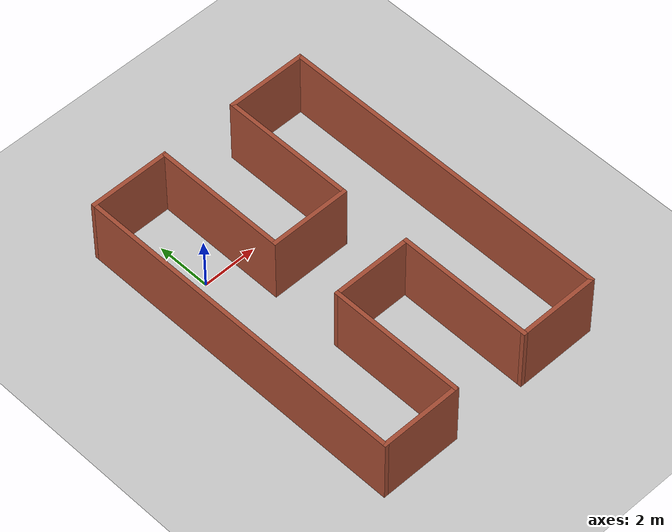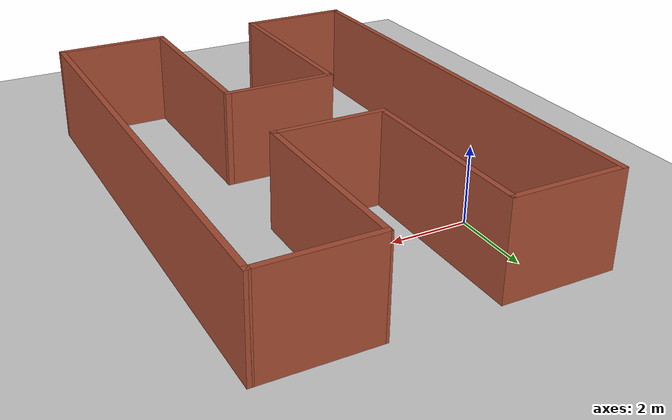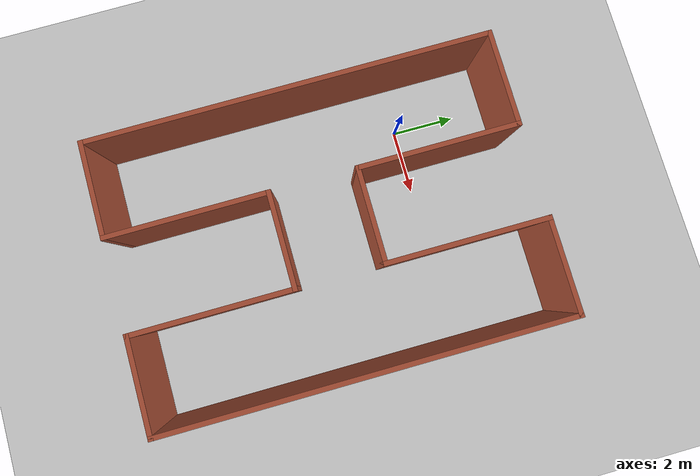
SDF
<sdf version="1.6">
 <world name="default">
  <light name="sun" type="directional">
   <pose>0 0 10 0 -0 0</pose>
   <diffuse>0.8 0.8 0.8 1</diffuse>
   <specular>0.2 0.2 0.2 1</specular>
   <attenuation>
    <range>1000</range>
    <constant>0.9</constant>
    <linear>0.01</linear>
    <quadratic>0.001</quadratic>
   </attenuation>
   <direction>-0.5 0.1 -0.9</direction>
  </light>
  <model name="ground_plane">
   <static>1</static>
   <link name="link">
    <collision name="collision">
     <geometry><plane><normal>0 0 1</normal><size>100 100</size></plane></geometry>
     <surface>
      <contact><collide_bitmask>65535</collide_bitmask></contact>
      <friction><ode><mu>100</mu><mu2>50</mu2></ode></friction>
     </surface>
    </collision>
    <visual name="visual">
     <cast_shadows>0</cast_shadows>
     <geometry><plane><normal>0 0 1</normal><size>100 100</size></plane></geometry>
     <material>
      <script><uri>file://media/materials/scripts/gazebo.material</uri><name>Gazebo/Grey</name></script>
     </material>
    </visual>
   </link>
  </model>
  <gravity>0 0 -9.8</gravity>
  <magnetic_field>6e-06 2.3e-05 -4.2e-05</magnetic_field>
  <atmosphere type="adiabatic"/>
  <physics name="default_physics" default="0" type="ode">
   <max_step_size>0.001</max_step_size>
   <real_time_factor>1</real_time_factor>
   <real_time_update_rate>1000</real_time_update_rate>
  </physics>
  <scene><ambient>0.4 0.4 0.4 1</ambient><background>0.7 0.7 0.7 1</background><shadows>1</shadows></scene>
  <spherical_coordinates>
   <surface_model>EARTH_WGS84</surface_model>
   <latitude_deg>0</latitude_deg>
   <longitude_deg>0</longitude_deg>
   <elevation>0</elevation>
   <heading_deg>0</heading_deg>
  </spherical_coordinates>
  <model name="Home">
   <pose>2.69856 -3.09385 0 0 -0 0</pose>
   <link name="Wall_11">
    <collision name="Wall_11_Collision">
     <geometry><box><size>12.5 0.15 2.5</size></box></geometry>
     <pose>0 0 1.25 0 -0 0</pose>
    </collision>
    <visual name="Wall_11_Visual">
     <pose>0 0 1.25 0 -0 0</pose>
     <geometry><box><size>12.5 0.15 2.5</size></box></geometry>
     <material>
      <script><uri>file://media/materials/scripts/gazebo.material</uri><name>Gazebo/Bricks</name></script>
      <ambient>1 1 1 1</ambient>
     </material>
     <meta><layer>0</layer></meta>
    </visual>
    <pose>4.27511 -2e-06 0 0 0 -1.5708</pose>
   </link>
   <link name="Wall_13">
    <collision name="Wall_13_Collision">
     <geometry><box><size>3 0.15 2.5</size></box></geometry>
     <pose>0 0 1.25 0 -0 0</pose>
    </collision>
    <visual name="Wall_13_Visual">
     <pose>0 0 1.25 0 -0 0</pose>
     <geometry><box><size>3 0.15 2.5</size></box></geometry>
     <material>
      <script><uri>file://media/materials/scripts/gazebo.material</uri><name>Gazebo/Bricks</name></script>
      <ambient>1 1 1 1</ambient>
     </material>
     <meta><layer>0</layer></meta>
    </visual>
    <pose>2.85011 -6.175 0 0 -0 3.14159</pose>
   </link>
   <link name="Wall_14">
    <collision name="Wall_14_Collision">
     <geometry><box><size>5 0.15 2.5</size></box></geometry>
     <pose>0 0 1.25 0 -0 0</pose>
    </collision>
    <visual name="Wall_14_Visual">
     <pose>0 0 1.25 0 -0 0</pose>
     <geometry><box><size>5 0.15 2.5</size></box></geometry>
     <material>
      <script><uri>file://media/materials/scripts/gazebo.material</uri><name>Gazebo/Bricks</name></script>
      <ambient>1 1 1 1</ambient>
     </material>
     <meta><layer>0</layer></meta>
    </visual>
    <pose>1.42511 -3.75 0 0 -0 1.5708</pose>
   </link>
   <link name="Wall_15">
    <collision name="Wall_15_Collision">
     <geometry><box><size>3 0.15 2.5</size></box></geometry>
     <pose>0 0 1.25 0 -0 0</pose>
    </collision>
    <visual name="Wall_15_Visual">
     <pose>0 0 1.25 0 -0 0</pose>
     <geometry><box><size>3 0.15 2.5</size></box></geometry>
     <material>
      <script><uri>file://media/materials/scripts/gazebo.material</uri><name>Gazebo/Bricks</name></script>
      <ambient>1 1 1 1</ambient>
     </material>
     <meta><layer>0</layer></meta>
    </visual>
    <pose>0.000111 -1.325 0 0 -0 3.14159</pose>
   </link>
   <link name="Wall_16">
    <collision name="Wall_16_Collision">
     <geometry><box><size>5 0.15 2.5</size></box></geometry>
     <pose>0 0 1.25 0 -0 0</pose>
    </collision>
    <visual name="Wall_16_Visual">
     <pose>0 0 1.25 0 -0 0</pose>
     <geometry><box><size>5 0.15 2.5</size></box></geometry>
     <material>
      <script><uri>file://media/materials/scripts/gazebo.material</uri><name>Gazebo/Bricks</name></script>
      <ambient>1 1 1 1</ambient>
     </material>
     <meta><layer>0</layer></meta>
    </visual>
    <pose>-1.42489 -3.75 0 0 0 -1.5708</pose>
   </link>
   <link name="Wall_2">
    <collision name="Wall_2_Collision">
     <geometry><box><size>3 0.15 2.5</size></box></geometry>
     <pose>0 0 1.25 0 -0 0</pose>
    </collision>
    <visual name="Wall_2_Visual">
     <pose>0 0 1.25 0 -0 0</pose>
     <geometry><box><size>3 0.15 2.5</size></box></geometry>
     <material>
      <script><uri>file://media/materials/scripts/gazebo.material</uri><name>Gazebo/Bricks</name></script>
      <ambient>1 1 1 1</ambient>
     </material>
     <meta><layer>0</layer></meta>
    </visual>
    <pose>-2.85011 6.1748 0 0 -0 0</pose>
   </link>
   <link name="Wall_20">
    <collision name="Wall_20_Collision">
     <geometry><box><size>3 0.15 2.5</size></box></geometry>
     <pose>0 0 1.25 0 -0 0</pose>
    </collision>
    <visual name="Wall_20_Visual">
     <pose>0 0 1.25 0 -0 0</pose>
     <geometry><box><size>3 0.15 2.5</size></box></geometry>
     <material>
      <script><uri>file://media/materials/scripts/gazebo.material</uri><name>Gazebo/Bricks</name></script>
      <ambient>1 1 1 1</ambient>
     </material>
     <meta><layer>0</layer></meta>
    </visual>
    <pose>-2.84989 -6.175 0 0 -0 3.14159</pose>
   </link>
   <link name="Wall_21">
    <collision name="Wall_21_Collision">
     <geometry><box><size>12.4998 0.15 2.5</size></box></geometry>
     <pose>0 0 1.25 0 -0 0</pose>
    </collision>
    <visual name="Wall_21_Visual">
     <pose>0 0 1.25 0 -0 0</pose>
     <geometry><box><size>12.4998 0.15 2.5</size></box></geometry>
     <material>
      <script><uri>file://media/materials/scripts/gazebo.material</uri><name>Gazebo/Bricks</name></script>
      <ambient>1 1 1 1</ambient>
     </material>
     <meta><layer>0</layer></meta>
    </visual>
    <pose>-4.275 -0.000101 0 0 -0 1.57081</pose>
   </link>
   <link name="Wall_5">
    <collision name="Wall_5_Collision">
     <geometry><box><size>5 0.15 2.5</size></box></geometry>
     <pose>0 0 1.25 0 -0 0</pose>
    </collision>
    <visual name="Wall_5_Visual">
     <pose>0 0 1.25 0 -0 0</pose>
     <geometry><box><size>5 0.15 2.5</size></box></geometry>
     <material>
      <script><uri>file://media/materials/scripts/gazebo.material</uri><name>Gazebo/Bricks</name></script>
      <ambient>1 1 1 1</ambient>
     </material>
     <meta><layer>0</layer></meta>
    </visual>
    <pose>-1.42511 3.7498 0 0 0 -1.5708</pose>
   </link>
   <link name="Wall_6">
    <collision name="Wall_6_Collision">
     <geometry><box><size>3 0.15 2.5</size></box></geometry>
     <pose>0 0 1.25 0 -0 0</pose>
    </collision>
    <visual name="Wall_6_Visual">
     <pose>0 0 1.25 0 -0 0</pose>
     <geometry><box><size>3 0.15 2.5</size></box></geometry>
     <material>
      <script><uri>file://media/materials/scripts/gazebo.material</uri><name>Gazebo/Bricks</name></script>
      <ambient>1 1 1 1</ambient>
     </material>
     <meta><layer>0</layer></meta>
    </visual>
    <pose>-0.000109 1.3248 0 0 -0 0</pose>
   </link>
   <link name="Wall_7">
    <collision name="Wall_7_Collision">
     <geometry><box><size>5 0.15 2.5</size></box></geometry>
     <pose>0 0 1.25 0 -0 0</pose>
    </collision>
    <visual name="Wall_7_Visual">
     <pose>0 0 1.25 0 -0 0</pose>
     <geometry><box><size>5 0.15 2.5</size></box></geometry>
     <material>
      <script><uri>file://media/materials/scripts/gazebo.material</uri><name>Gazebo/Bricks</name></script>
      <ambient>1 1 1 1</ambient>
     </material>
     <meta><layer>0</layer></meta>
    </visual>
    <pose>1.42489 3.7498 0 0 -0 1.5708</pose>
   </link>
   <link name="Wall_8">
    <collision name="Wall_8_Collision">
     <geometry><box><size>3 0.15 2.5</size></box></geometry>
     <pose>0 0 1.25 0 -0 0</pose>
    </collision>
    <visual name="Wall_8_Visual">
     <pose>0 0 1.25 0 -0 0</pose>
     <geometry><box><size>3 0.15 2.5</size></box></geometry>
     <material>
      <script><uri>file://media/materials/scripts/gazebo.material</uri><name>Gazebo/Bricks</name></script>
      <ambient>1 1 1 1</ambient>
     </material>
     <meta><layer>0</layer></meta>
    </visual>
    <pose>2.85 6.1749 0 0 -0 7e-05</pose>
   </link>
   <static>1</static>
  </model>
 </world>
</sdf>
